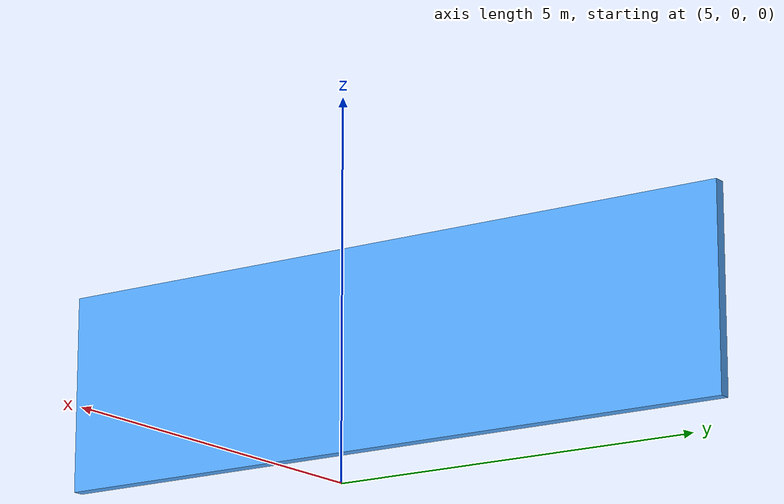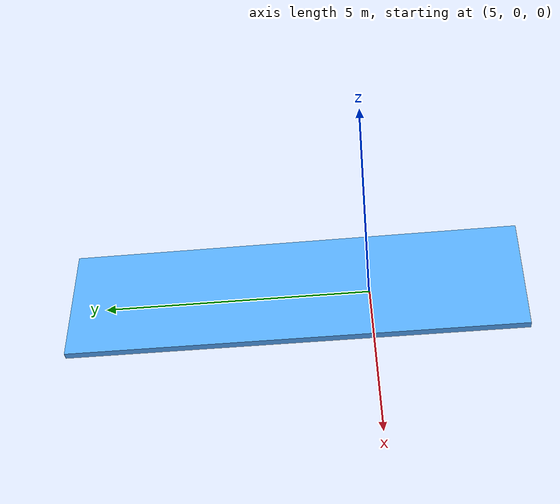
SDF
<?xml version='1.0'?>
<sdf version='1.6'>
  <model name='cambio'>
    <pose frame=''>6.39018 1.57912 0 0 -0 0</pose>
    <link name='Wall_0'>
      <collision name='Wall_0_Collision'>
        <geometry>
          <box>
            <size>9.25 0.15 2.5</size>
          </box>
        </geometry>
        <pose frame=''>0 0 1.25 0 -0 0</pose>
      </collision>
      <visual name='Wall_0_Visual'>
        <pose frame=''>0 0 1.25 0 -0 0</pose>
        <geometry>
          <box>
            <size>9.25 0.15 2.5</size>
          </box>
        </geometry>
        <material>
          <script>
            <uri>file://media/materials/scripts/gazebo.material</uri>
            <name>Gazebo/Grey</name>
          </script>
          <ambient>0.333333 0.666667 1 1</ambient>
        </material>
      </visual>
      <pose frame=''>0 0 0 0 -0 1.5708</pose>
    </link>
    <static>1</static>
  </model>
</sdf>
